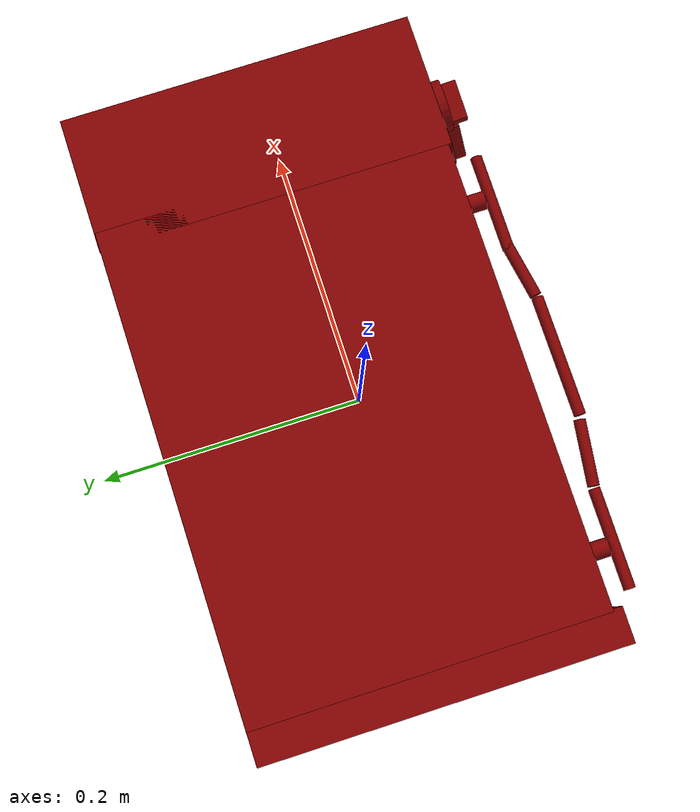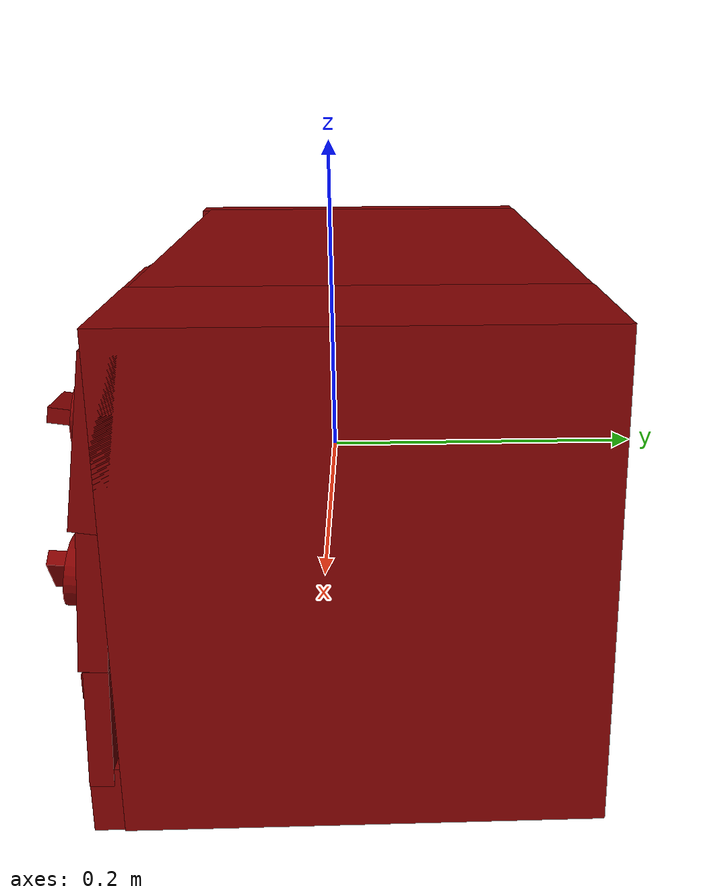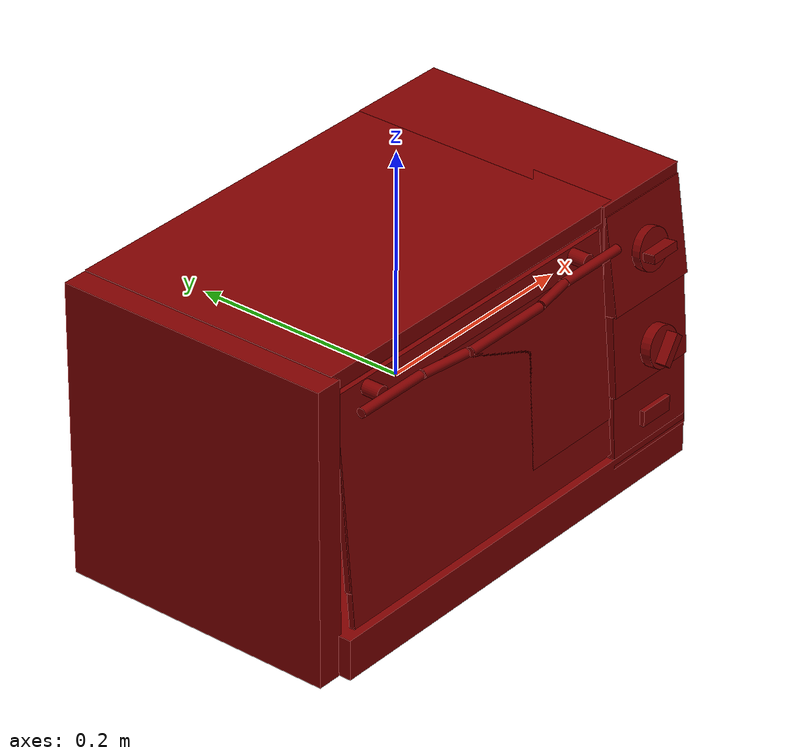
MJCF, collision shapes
<?xml version='1.0' encoding='UTF-8'?>
<mujoco model="model">
  <option timestep="0.002" gravity="0.0 0.0 -9.81"/>
  <compiler angle="radian"/>
  <asset>
    <mesh file="visuals/door.obj" name="door_vis"/>
    <mesh file="visuals/knob_temp.obj" name="knob_temp_vis"/>
    <mesh file="visuals/knob_time.obj" name="knob_time_vis"/>
    <mesh file="visuals/rack0.obj" name="rack0_vis"/>
    <mesh file="visuals/Body001.obj" name="Body001_vis"/>
    <mesh file="visuals/Button001.obj" name="Button001_vis"/>
    <mesh file="visuals/window.obj" name="window_vis"/>
    <texture file="visuals/T_BC001.png" name="Body001_material" type="2d"/>
    <material name="Body001_material" rgba="1 1 1 1.0" texture="Body001_material" shininess="0.1" specular="0.9"/>
    <texture file="visuals/T_BC001.png" name="door_material" type="2d"/>
    <material name="door_material" rgba="1 1 1 1.0" texture="door_material" shininess="0.1" specular="0.9"/>
    <texture file="visuals/T_BC001.png" name="window_material" type="2d"/>
    <material name="window_material" rgba="1 1 1 0.800000011920929" texture="window_material" shininess="0.1" specular="0.9"/>
    <texture file="visuals/T_BC001.png" name="knob_temp_material" type="2d"/>
    <material name="knob_temp_material" rgba="1 1 1 1.0" texture="knob_temp_material" shininess="0.1" specular="0.9"/>
    <texture file="visuals/T_BC001.png" name="knob_time_material" type="2d"/>
    <material name="knob_time_material" rgba="1 1 1 1.0" texture="knob_time_material" shininess="0.1" specular="0.9"/>
    <texture file="visuals/T_BC001.png" name="rack0_material" type="2d"/>
    <material name="rack0_material" rgba="1 1 1 1.0" texture="rack0_material" shininess="0.1" specular="0.9"/>
    <texture file="visuals/T_BC001.png" name="Button001_material" type="2d"/>
    <material name="Button001_material" rgba="1 1 1 1.0" texture="Button001_material" shininess="0.1" specular="0.9"/>
  </asset>
  <default>
    <default class="visual">
      <geom conaffinity="0" contype="0" group="1" type="mesh"/>
    </default>
    <default class="collision">
      <geom group="0" rgba="0.5 0 0 0.5"/>
    </default>
    <default class="spawn">
      <geom group="0" rgba="1 1 1 0.5" contype="0" conaffinity="0"/>
      <site group="0" rgba="1 1 1 0.5"/>
    </default>
    <default class="region">
      <geom group="1" conaffinity="0" contype="0" rgba="0 1 0 0"/>
    </default>
  </default>
  <worldbody>
    <body>
      <body name="object">
        <geom mesh="Body001_vis" type="mesh" solimp="0.998 0.998 0.001" solref="0.001 1" friction="0.95 0.3 0.1" class="visual" material="Body001_material"/>
        <geom class="collision" type="box" pos="-0.21181533 0.01691577 -0.00033260" size="0.012318084016442299 0.12630335986614227 0.13237421214580536" quat="1.0 0.0 0.0 0.0"/>
        <geom class="collision" type="box" pos="0.17625386 0.01928326 0.00035870" size="0.04807306453585625 0.1244635060429573 0.13252048194408417" quat="1.0 0.0 0.0 0.0"/>
        <geom class="collision" type="box" pos="-0.02995925 0.02021358 0.12536690" size="0.17120349407196045 0.1230192482471466 0.007512243464589119" quat="1.0 0.0 0.0 0.0"/>
        <geom class="collision" type="box" pos="-0.03104379 0.13236394 -0.00665645" size="0.17086303234100342 0.011382781900465488 0.12567463517189026" quat="1.0 0.0 0.0 0.0"/>
        <geom class="collision" type="box" pos="0.01063535 0.01087229 -0.11377190" size="0.2128705382347107 0.13172350823879242 0.018143709748983383" quat="1.0 0.0 0.0 0.0"/>
        <geom class="collision" type="box" pos="0.17709379 -0.11028545 0.00472065" size="0.04723312705755234 0.007223581895232201 0.044000741094350815" quat="0.9993194341659546 -0.03688732907176018 -0.0 0.0"/>
        <geom class="collision" type="box" pos="0.17703880 -0.11355936 -0.07214826" size="0.047288112342357635 0.00625208904966712 0.03285124525427818" quat="0.9998456835746765 -0.017566422000527382 -0.0 0.0"/>
        <geom class="collision" type="box" pos="0.17707415 -0.10392905 0.07808442" size="0.04725277051329613 0.008796773850917816 0.044000741094350815" quat="0.9974696040153503 -0.07109429687261581 -0.0 0.0"/>
        <body name="door">
          <joint axis="1.0 0.0 0.0" pos="-0.03525141 -0.11802383 -0.09789027" limited="true" name="door_joint" range="0.0 1.5707963267948966" type="hinge" damping="1" frictionloss="1" armature=".01" stiffness="0.05"/>
          <geom mesh="door_vis" type="mesh" solimp="0.998 0.998 0.001" solref="0.001 1" friction="0.95 0.3 0.1" class="visual" material="door_material"/>
          <geom class="collision" type="box" pos="-0.03472673 -0.10865048 0.01167615" size="0.1609179973602295 0.002677108161151409 0.10121496766805649" quat="0.9991040229797363 -0.04232166334986687 -0.0 0.0" name="door_main"/>
          <geom class="collision" type="cylinder" pos="-0.15678781 -0.12358201 0.10495287" size="0.004092741757631302 0.03496949374675751" quat="0.7071068286895752 -0.0 0.7071067690849304 0.0"/>
          <geom class="collision" type="cylinder" pos="0.09087375 -0.11056154 0.10539925" size="0.006438995711505413 0.008417369797825813" quat="0.5 0.5 0.4999999701976776 -0.5"/>
          <geom class="collision" type="cylinder" pos="-0.16125292 -0.11056154 0.10539925" size="0.006438995711505413 0.008417369797825813" quat="0.5 0.5 0.4999999701976776 -0.5"/>
          <geom class="collision" type="cylinder" pos="0.08727194 -0.12358201 0.10495289" size="0.004092741757631302 0.03482336550951004" quat="0.7071068286895752 -0.0 0.7071067690849304 0.0"/>
          <geom class="collision" type="cylinder" pos="-0.02897442 -0.13129120 0.10495287" size="0.004092741757631302 0.042975109070539474" quat="0.7071043848991394 -0.0018515812698751688 0.7071043252944946 0.001851581153459847" name="door_handle_main"/>
          <geom class="collision" type="cylinder" pos="0.03502414 -0.12713628 0.10495289" size="0.004092741757631302 0.019709443673491478" quat="0.7044579982757568 -0.061146918684244156 0.7044579386711121 0.06114691495895386"/>
          <geom class="collision" type="cylinder" pos="-0.09755024 -0.12695857 0.10495289" size="0.004092741757631302 0.022852247580885887" quat="0.705485999584198 0.0478493757545948 0.7054859399795532 -0.047849372029304504"/>
          <body name="window">
            <geom mesh="window_vis" type="mesh" solimp="0.998 0.998 0.001" solref="0.001 1" friction="0.95 0.3 0.1" class="visual" material="window_material"/>
            <geom class="collision" type="box" pos="-0.03472673 -0.10826736 0.01618944" size="0.16281473636627197 0.002677107695490122 0.07347837090492249" quat="0.9991040229797363 -0.04232166334986687 -0.0 0.0"/>
          </body>
        </body>
        <body name="knob_temp">
          <joint axis="1.862645149230957e-08 0.9905868768692017 -0.13688477873802185" pos="0.17447574 -0.12196452 0.08029763" limited="true" name="knob_temp_joint" range="0.0 5.323254218582705" type="hinge" damping="0.05" frictionloss="0.75" armature="1"/>
          <geom mesh="knob_temp_vis" type="mesh" solimp="0.998 0.998 0.001" solref="0.001 1" friction="0.95 0.3 0.1" class="visual" material="knob_temp_material"/>
          <geom class="collision" type="cylinder" pos="0.17445040 -0.11742394 0.07993882" size="0.018798578530550003 0.0039370181038975716" quat="0.750392496585846 0.6609925031661987 0.0 0.0" friction="100 0.5 0.01"/>
          <geom class="collision" type="box" pos="0.17422687 -0.12687279 0.08082327" size="0.003927817568182945 0.00618156511336565 0.014596188440918922" quat="0.6980964541435242 -0.053591083735227585 -0.7126851677894592 0.04323406144976616" name="knob_temp_main" friction="100 0.5 0.01"/>
        </body>
        <body name="knob_time">
          <joint axis="0.00022061914205551147 0.9939551949501038 -0.10978568345308304" pos="0.17557192 -0.13167080 -0.00637556" limited="true" name="knob_time_joint" range="0.0 5.550147021341967" type="hinge" damping="0.05" frictionloss="0.75" armature="1"/>
          <geom mesh="knob_time_vis" type="mesh" solimp="0.998 0.998 0.001" solref="0.001 1" friction="0.95 0.3 0.1" class="visual" material="knob_time_material"/>
          <geom class="collision" type="cylinder" pos="0.17608625 -0.12784824 -0.00690590" size="0.018475616350769997 0.004937620833516121" quat="0.7443777322769165 0.6677308082580566 -0.0008817413472570479 0.006049970630556345" friction="100 0.5 0.01"/>
          <geom class="collision" type="box" pos="0.17572276 -0.13700259 -0.00641494" size="0.004102236125618219 0.005853461567312479 0.01399307046085596" quat="0.34811753034591675 -0.0016535589238628745 -0.9367157816886902 0.037080712616443634" name="knob_time_main" friction="100 0.5 0.01"/>
        </body>
        <body name="rack0">
          <geom class="region" name="reg_rack0" type="box" pos="-0.036959105000000006 0.01209959 0.070608035" size="0.158882325 0.10004479999999999 0.046434155000000005"/>
          <joint axis="0.0 -1.0 0.0" pos="-0.03565982 0.01598638 0.01968616" limited="true" name="rack0_joint" range="0.0 0.18" type="slide" damping="1" frictionloss="1" armature=".01" stiffness="0.05"/>
          <geom mesh="rack0_vis" type="mesh" solimp="0.998 0.998 0.001" solref="0.001 1" friction="0.95 0.3 0.1" class="visual" material="rack0_material"/>
          <geom class="collision" type="box" pos="-0.03749241 0.01211783 0.02137708" size="0.15941910445690155 0.10069171339273453 0.002166612772271037" quat="1.0 0.0 0.0 0.0"/>
        </body>
        <body name="Button001">
          <joint axis="0.0 1.0 0.0" pos="0.17413136 -0.12659375 -0.06700263" limited="true" name="Button001_joint" range="0.0 0.003" type="slide" damping="1" frictionloss="1" armature=".01" stiffness="4" springref="0"/>
          <geom mesh="Button001_vis" type="mesh" solimp="0.998 0.998 0.001" solref="0.001 1" friction="0.95 0.3 0.1" class="visual" material="Button001_material"/>
          <geom class="collision" type="box" pos="0.17411357 -0.12724022 -0.06714360" size="0.007137680891901255 0.002164183184504509 0.01704106479883194" quat="0.7104895710945129 -1.6860785771039e-12 -0.703707754611969 -9.455109761802305e-08"/>
        </body>
        <geom class="region" name="reg_int" type="box" pos="-0.035404340000000006 0.012658639999999999 0.010983309999999996" size="0.16025854 0.1070572 0.10589479"/>
        <geom class="region" name="reg_main" type="box" pos="0.0 0.011164644999999994 0.0" size="0.22663297 0.133582085 0.13387912"/>
      </body>
    </body>
  </worldbody>
  <actuator>
    <motor name="door_joint_actuator" joint="door_joint" gear="50"/>
    <motor name="knob_temp_joint_actuator" joint="knob_temp_joint" gear="50"/>
    <motor name="knob_time_joint_actuator" joint="knob_time_joint" gear="50"/>
    <motor name="rack0_joint_actuator" joint="rack0_joint" gear="50"/>
    <motor name="Button001_joint_actuator" joint="Button001_joint" gear="0.5"/>
  </actuator>
</mujoco>
